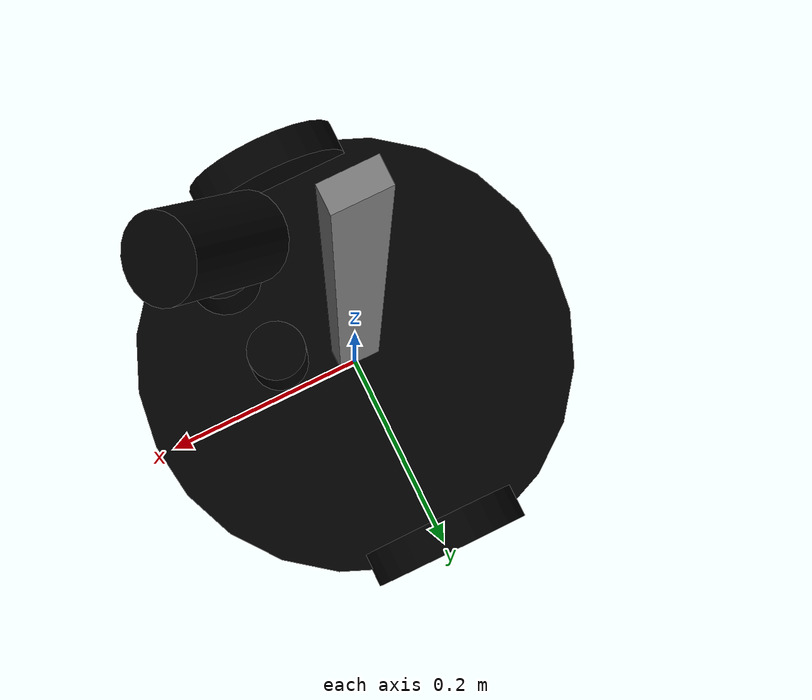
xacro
<?xml version="1.0"?>

<robot>

  <macro name="dummy-inertial">
    <inertial>
      <mass value="0.0001" />
      <origin xyz="0 0 0" />
      <inertia ixx="0.0001" ixy="0.0" ixz="0.0"
               iyy="0.0001" iyz="0.0"
               izz="0.001" />
    </inertial>
  </macro>

  <macro name="dummy-link" params="name">
    <link name="${name}">
      <dummy-inertial />
    </link>
  </macro>

  <macro name="laser-link" params="name">
    <link name="${name}">
      <dummy-inertial />
      <visual>
        <material name="Black" />
        <geometry>
          <cylinder radius="0.0265" length="0.08" />
        </geometry>
      </visual>
      <collision>
        <geometry>
          <cylinder radius="0.0265" length="0.08" />
        </geometry>
      </collision>
    </link>
  </macro>

  <include filename="$(find parsec_description)/urdf/colors.xacro" />
  <include filename="$(find parsec_description)/urdf/parameters.xacro" />
  <include filename="$(find parsec_description)/urdf/gazebo.xacro" />

  <dummy-link name="base_footprint" />

  <link name="base_link">
    <inertial>
      <!-- We are just approximating the inertia matrix here by using
           the formula for a solid cylinder. The weight is just
           guessed. -->
      <mass value="15.0" />
      <inertia ixx="0.0033" ixy="0" ixz="0" iyy="0.0033" iyz="0" izz="0.0315315" />
    </inertial>
    <visual>
      <material name="Black" />
      <geometry>
        <cylinder radius="${base_radius}" length="${base_height}" />
      </geometry>
    </visual>
    <collision>
      <geometry>
        <cylinder radius="${base_radius}" length="${base_height}" />
      </geometry>
    </collision>
  </link>

  <link name="left_wheel_link" >
    <inertial>
      <!-- Guessing the inertia matrix by approximating a wheel's
           weight with 0.5kg and using the formula for a solid
           cylinder -->
      <mass value="1.45" />
      <inertia ixx="0.00013716" ixy="0" ixz="0" iyy="0.00013716" iyz="0" izz="0.002032" />
    </inertial>
    <visual>
      <material name="Black" />
      <geometry>
        <cylinder radius="${wheel_radius}" length="0.032" />
        <color rgba="0 0 0 1" />
      </geometry>
    </visual>
    <collision>
      <geometry>
        <cylinder radius="${wheel_radius}" length="0.032" />
      </geometry>
    </collision>
  </link>

  <link name="right_wheel_link" >
    <inertial>
      <!-- Guessing the inertia matrix by approximating a wheel's
           weight with 0.5kg and using the formula for a solid
           cylinder -->
      <mass value="1.45" />
      <inertia ixx="0.00013716" ixy="0" ixz="0" iyy="0.00013716" iyz="0" izz="0.002032" />
    </inertial>
    <visual>
      <material name="Black" />
      <geometry>
        <cylinder radius="${wheel_radius}" length="0.032" />
      </geometry>
    </visual>
    <collision>
      <geometry>
        <cylinder radius="${wheel_radius}" length="0.032" />
      </geometry>
    </collision>
  </link>

  <link name="front_caster_link">
    <dummy-inertial />
    <visual>
      <origin xyz="0 0 -0.0381" />
      <material name="Black" />
      <geometry>
        <box size="0.03 0.03 ${wheel_radius}" />
      </geometry>
    </visual>
    <collision>
      <origin xyz="0 0 -0.0381" />
      <geometry>
        <box size="0.03 0.03 ${wheel_radius}" />
      </geometry>
    </collision>
  </link>

  <link name="rear_caster_link">
    <dummy-inertial />
    <visual>
      <origin xyz="0 0 -0.0381" />
      <material name="Black" />
      <geometry>
        <box size="0.03 0.03 ${wheel_radius}" />
      </geometry>
    </visual>
    <collision>
      <origin xyz="0 0 -0.0381" />
      <geometry>
        <box size="0.03 0.03 ${wheel_radius}" />
      </geometry>
    </collision>
  </link>

  <link name="mast_link">
    <!-- A heavy mast makes the model very unstable in gazebo. -->
    <dummy-inertial />
    <!-- The origin of the mast is at the origin of the base
         link. That means that we need to move the visual and
         collision elements up by heigt / 2.-->
    <visual>
      <material name="Grey" />
      <origin xyz="0 0 ${mast_height / 2}" />
      <geometry>
        <box size="0.04 0.02 ${mast_height}" />
      </geometry>
    </visual>
    <collision>
      <origin xyz="0 0 0.825" />
      <geometry>
        <box size="0.04 0.02 ${mast_height}" />
      </geometry>
    </collision>
  </link>

  <laser-link name="base_laser" />

  <dummy-link name="tilt_laser_base_link" />
  <laser-link name="tilt_laser" />

  <laser-link name="fixed_angle_laser" />

  <joint name="base_footprint_joint" type="fixed">
    <parent link="base_footprint" />
    <child link="base_link" />
    <origin xyz="0 0 0.0762" rpy="0 0 0" />
  </joint>

  <joint name="left_wheel_joint" type="fixed">
    <parent link="base_link" />
    <child link="left_wheel_link" />
    <origin xyz="0 0.195 0" rpy="1.5707963268 0 0" />
    <axis xyz="0 0 1" />
  </joint>

  <joint name="right_wheel_joint" type="fixed">
    <parent link="base_link" />
    <child link="right_wheel_link" />
    <origin xyz="0 -0.195 0" rpy="1.5707963268 0 0" />
    <axis xyz="0 0 1" />
  </joint>

  <joint name="front_caster_joint" type="fixed">
    <parent link="base_link" />
    <child link="front_caster_link" />
    <origin xyz="0.15 0 0" />
  </joint>

  <joint name="rear_caster_joint" type="fixed">
    <parent link="base_link" />
    <child link="rear_caster_link" />
    <origin xyz="-0.15 0 0" />
  </joint>

  <joint name="mast_joint" type="fixed">
    <parent link="base_link" />
    <child link="mast_link" />
    <origin xyz="0 0 0" />
  </joint>

  <joint name="base_laser_joint" type="fixed">
    <parent link="mast_link" />
    <child link="base_laser" />
    <insert_block name="base_laser_origin" />
  </joint>

  <joint name="tilt_laser_joint" type="revolute">
    <parent link="mast_link" />
    <child link="tilt_laser_base_link" />
    <insert_block name="servo_axis_origin" />
    <axis xyz="0 1 0" />
    <!-- Using dummy effort and velocity values here. They are not
         used by the controller. -->
    <limit lower="-1.5707963268" upper="1.5707963268"
           effort="1.0" velocity="10.0" />
  </joint>

  <joint name="tilt_laser_sensor_joint" type="fixed">
    <parent link="tilt_laser_base_link" />
    <child link="tilt_laser" />
    <insert_block name="tilting_laser_offset" />
  </joint>

  <joint name="fixed_angle_laser_joint" type="fixed">
    <parent link="mast_link" />
    <child link="fixed_angle_laser" />
    <insert_block name="fixed_angle_laser_origin" />
  </joint>
</robot>

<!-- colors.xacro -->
<robot>
  <material name="Black">
    <color rgba="0 0 0 1" />
  </material>

  <material name="Grey">
    <color rgba="0.5 0.5 0.5 1" />
  </material>
</robot>

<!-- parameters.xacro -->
<robot>
  <!-- Units used are meters and radians, according to REP 103
       (http://www.ros.org/reps/rep-0103.html).-->

  <!-- Hand measured values. -->
  <property name="base_radius" value="0.21" />
  <property name="base_height" value="0.01" />
  <property name="wheel_radius" value="0.0762" />
  <property name="mast_height" value="0.70" />

  <!-- Measured from the base. -->
  <property name="base_laser_origin">
    <origin xyz="0.07 -0.015 0.095" />
  </property>

  <!-- Measured from the base -->
  <property name="servo_axis_origin">
    <origin xyz="0.085 -0.045 0.38" rpy="0.00 0.00 0.00" />
  </property>

  <!-- The distance from the axis of rotation to the origin of the
       tilting laser sensor. See also
       parsec_calibration/src/parsec_calibration/servo_calibration_routine.py
       -->
  <property name="tilting_laser_offset">
    <origin xyz="0 0 0.034" rpy="-0.015 0 0" />
  </property>

  <property name="fixed_angle_laser_origin">
    <!-- The laser is mounted at an angle of 40 degrees -->
    <origin xyz="0.09 0 ${0.8 - base_height / 2 - wheel_radius}"
            rpy="-0.03 0.698 0"/>
  </property>
</robot>
